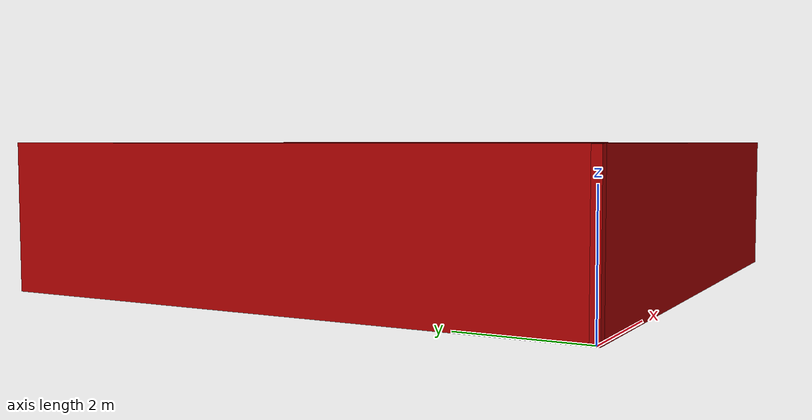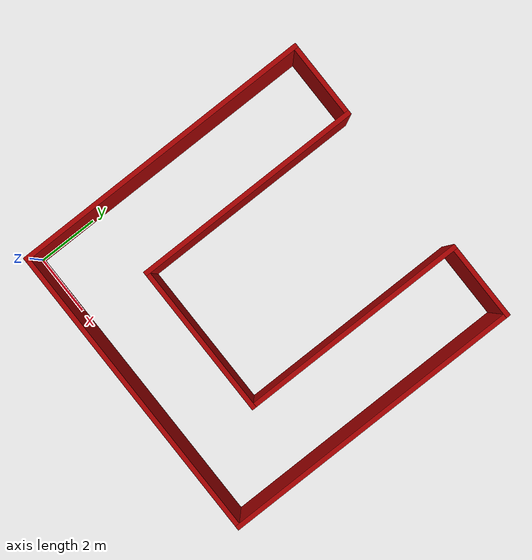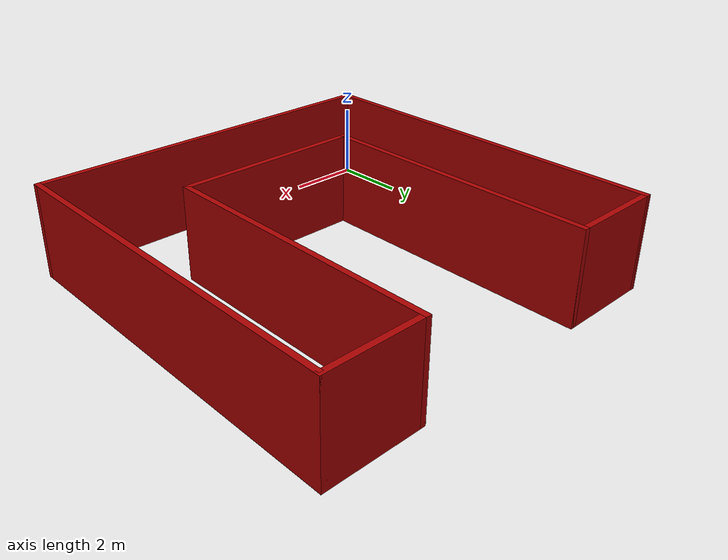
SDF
<?xml version='1.0'?>
<sdf version='1.6'>
  <model name='mybuilding'>
    <pose frame=''>5 5 0 0 -0 0</pose>
    <link name='Wall_0'>
      <collision name='Wall_0_Collision'>
        <geometry>
          <box>
            <size>10.15 0.15 2.5</size>
          </box>
        </geometry>
        <pose frame=''>0 0 1.25 0 -0 0</pose>
      </collision>
      <visual name='Wall_0_Visual'>
        <pose frame=''>0 0 1.25 0 -0 0</pose>
        <geometry>
          <box>
            <size>10.15 0.15 2.5</size>
          </box>
        </geometry>
        <material>
          <script>
            <uri>file://media/materials/scripts/gazebo.material</uri>
            <name>Gazebo/Grey</name>
          </script>
          <ambient>0.666667 0 0 1</ambient>
        </material>
        <meta>
          <layer>0</layer>
        </meta>
      </visual>
      <pose frame=''>-5 0 0 0 -0 1.5708</pose>
    </link>
    <link name='Wall_10'>
      <collision name='Wall_10_Collision'>
        <geometry>
          <box>
            <size>7.65 0.15 2.5</size>
          </box>
        </geometry>
        <pose frame=''>0 0 1.25 0 -0 0</pose>
      </collision>
      <visual name='Wall_10_Visual'>
        <pose frame=''>0 0 1.25 0 -0 0</pose>
        <geometry>
          <box>
            <size>7.65 0.15 2.5</size>
          </box>
        </geometry>
        <material>
          <script>
            <uri>file://media/materials/scripts/gazebo.material</uri>
            <name>Gazebo/Grey</name>
          </script>
          <ambient>0.666667 0 0 1</ambient>
        </material>
        <meta>
          <layer>0</layer>
        </meta>
      </visual>
      <pose frame=''>-2.5 1.25 0 0 0 -1.5708</pose>
    </link>
    <link name='Wall_11'>
      <collision name='Wall_11_Collision'>
        <geometry>
          <box>
            <size>5.15 0.15 2.5</size>
          </box>
        </geometry>
        <pose frame=''>0 0 1.25 0 -0 0</pose>
      </collision>
      <visual name='Wall_11_Visual'>
        <pose frame=''>0 0 1.25 0 -0 0</pose>
        <geometry>
          <box>
            <size>5.15 0.15 2.5</size>
          </box>
        </geometry>
        <material>
          <script>
            <uri>file://media/materials/scripts/gazebo.material</uri>
            <name>Gazebo/Grey</name>
          </script>
          <ambient>0.666667 0 0 1</ambient>
        </material>
        <meta>
          <layer>0</layer>
        </meta>
      </visual>
      <pose frame=''>0 -2.5 0 0 -0 0</pose>
    </link>
    <link name='Wall_12'>
      <collision name='Wall_12_Collision'>
        <geometry>
          <box>
            <size>7.65 0.15 2.5</size>
          </box>
        </geometry>
        <pose frame=''>0 0 1.25 0 -0 0</pose>
      </collision>
      <visual name='Wall_12_Visual'>
        <pose frame=''>0 0 1.25 0 -0 0</pose>
        <geometry>
          <box>
            <size>7.65 0.15 2.5</size>
          </box>
        </geometry>
        <material>
          <script>
            <uri>file://media/materials/scripts/gazebo.material</uri>
            <name>Gazebo/Grey</name>
          </script>
          <ambient>0.666667 0 0 1</ambient>
        </material>
        <meta>
          <layer>0</layer>
        </meta>
      </visual>
      <pose frame=''>2.5 1.25 0 0 -0 1.5708</pose>
    </link>
    <link name='Wall_13'>
      <collision name='Wall_13_Collision'>
        <geometry>
          <box>
            <size>2.65 0.15 2.5</size>
          </box>
        </geometry>
        <pose frame=''>0 0 1.25 0 -0 0</pose>
      </collision>
      <visual name='Wall_13_Visual'>
        <pose frame=''>0 0 1.25 0 -0 0</pose>
        <geometry>
          <box>
            <size>2.65 0.15 2.5</size>
          </box>
        </geometry>
        <material>
          <script>
            <uri>file://media/materials/scripts/gazebo.material</uri>
            <name>Gazebo/Grey</name>
          </script>
          <ambient>0.666667 0 0 1</ambient>
        </material>
        <meta>
          <layer>0</layer>
        </meta>
      </visual>
      <pose frame=''>3.75 5 0 0 -0 0</pose>
    </link>
    <link name='Wall_14'>
      <collision name='Wall_14_Collision'>
        <geometry>
          <box>
            <size>10.15 0.15 2.5</size>
          </box>
        </geometry>
        <pose frame=''>0 0 1.25 0 -0 0</pose>
      </collision>
      <visual name='Wall_14_Visual'>
        <pose frame=''>0 0 1.25 0 -0 0</pose>
        <geometry>
          <box>
            <size>10.15 0.15 2.5</size>
          </box>
        </geometry>
        <material>
          <script>
            <uri>file://media/materials/scripts/gazebo.material</uri>
            <name>Gazebo/Grey</name>
          </script>
          <ambient>0.666667 0 0 1</ambient>
        </material>
        <meta>
          <layer>0</layer>
        </meta>
      </visual>
      <pose frame=''>5 0 0 0 0 -1.5708</pose>
    </link>
    <link name='Wall_15'>
      <collision name='Wall_15_Collision'>
        <geometry>
          <box>
            <size>10.15 0.15 2.5</size>
          </box>
        </geometry>
        <pose frame=''>0 0 1.25 0 -0 0</pose>
      </collision>
      <visual name='Wall_15_Visual'>
        <pose frame=''>0 0 1.25 0 -0 0</pose>
        <geometry>
          <box>
            <size>10.15 0.15 2.5</size>
          </box>
        </geometry>
        <material>
          <script>
            <uri>file://media/materials/scripts/gazebo.material</uri>
            <name>Gazebo/Grey</name>
          </script>
          <ambient>0.666667 0 0 1</ambient>
        </material>
        <meta>
          <layer>0</layer>
        </meta>
      </visual>
      <pose frame=''>0 -5 0 0 -0 3.14159</pose>
    </link>
    <link name='Wall_9'>
      <collision name='Wall_9_Collision'>
        <geometry>
          <box>
            <size>2.65 0.15 2.5</size>
          </box>
        </geometry>
        <pose frame=''>0 0 1.25 0 -0 0</pose>
      </collision>
      <visual name='Wall_9_Visual'>
        <pose frame=''>0 0 1.25 0 -0 0</pose>
        <geometry>
          <box>
            <size>2.65 0.15 2.5</size>
          </box>
        </geometry>
        <material>
          <script>
            <uri>file://media/materials/scripts/gazebo.material</uri>
            <name>Gazebo/Grey</name>
          </script>
          <ambient>0.666667 0 0 1</ambient>
        </material>
        <meta>
          <layer>0</layer>
        </meta>
      </visual>
      <pose frame=''>-3.75 5 0 0 -0 0</pose>
    </link>
    <static>1</static>
  </model>
</sdf>
